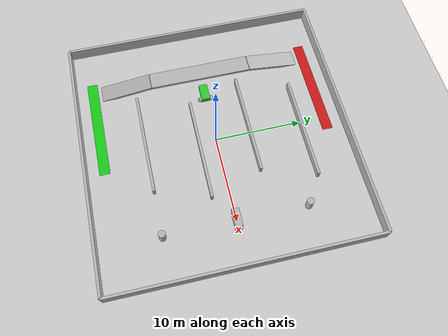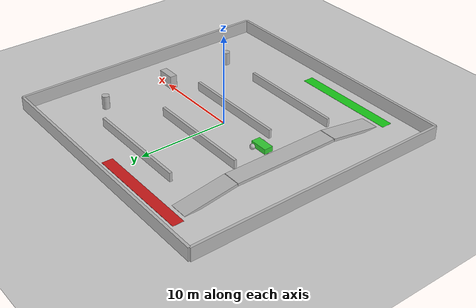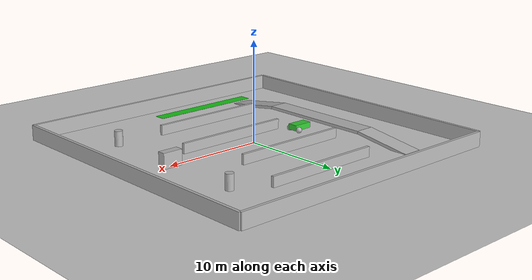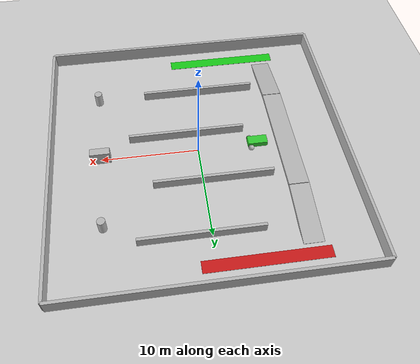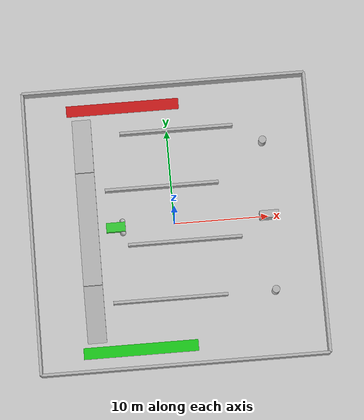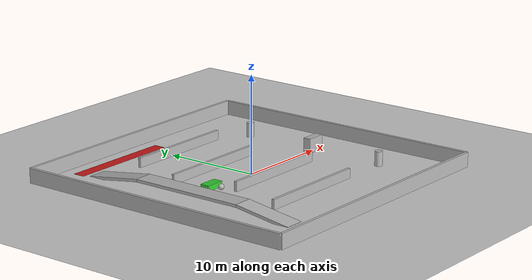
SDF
<sdf version="1.9">
 <world name="navigrid_world">
  <physics name="1ms" type="ignored">
   <max_step_size>0.001</max_step_size>
   <real_time_factor>1.0</real_time_factor>
  </physics>
  <plugin filename="gz-sim-physics-system" name="gz::sim::systems::Physics"/>
  <plugin filename="gz-sim-scene-broadcaster-system" name="gz::sim::systems::SceneBroadcaster"/>
  <plugin filename="gz-sim-sensors-system" name="gz::sim::systems::Sensors">
   <render_engine>ogre2</render_engine>
  </plugin>
  <plugin filename="gz-sim8-imu-system" name="gz::sim::systems::Imu"/>
  <plugin filename="gz-sim-user-commands-system" name="gz::sim::systems::UserCommands"/>
  <light name="sun" type="directional">
   <pose>0 0 10 0 0 0</pose>
   <diffuse>0.8 0.8 0.8 1</diffuse>
   <direction>-0.5 0.1 -0.9</direction>
  </light>
  <model name="ground_plane">
   <static>true</static>
   <link name="link">
    <collision name="collision">
     <geometry><plane><normal>0 0 1</normal><size>100 100</size></plane></geometry>
    </collision>
    <visual name="visual"><geometry><plane><normal>0 0 1</normal><size>100 100</size></plane></geometry></visual>
   </link>
  </model>
  <model name="start_zone_A">
   <static>true</static>
   <pose>-4.5 -13 0.011 0 0 0</pose>
   <link name="link">
    <visual name="visual">
     <geometry><box><size>12 1.2 0.02</size></box></geometry>
     <material>
      <ambient>0.1 0.8 0.1 1</ambient>
      <diffuse>0.1 0.8 0.1 1</diffuse>
      <emissive>0.02 0.2 0.02 1</emissive>
     </material>
    </visual>
   </link>
  </model>
  <model name="goal_zone_B">
   <static>true</static>
   <pose>-4.5 13 0.011 0 0 0</pose>
   <link name="link">
    <visual name="visual">
     <geometry><box><size>12 1.2 0.02</size></box></geometry>
     <material>
      <ambient>0.8 0.1 0.1 1</ambient>
      <diffuse>0.8 0.1 0.1 1</diffuse>
      <emissive>0.2 0.02 0.02 1</emissive>
     </material>
    </visual>
   </link>
  </model>
  <model name="north_wall">
   <static>true</static>
   <pose>0 15 0.75 0 0 0</pose>
   <link name="link">
    <collision name="collision"><geometry><box><size>30 0.3 1.5</size></box></geometry></collision>
    <visual name="visual"><geometry><box><size>30 0.3 1.5</size></box></geometry></visual>
   </link>
  </model>
  <model name="south_wall">
   <static>true</static>
   <pose>0 -15 0.75 0 0 0</pose>
   <link name="link">
    <collision name="collision"><geometry><box><size>30 0.3 1.5</size></box></geometry></collision>
    <visual name="visual"><geometry><box><size>30 0.3 1.5</size></box></geometry></visual>
   </link>
  </model>
  <model name="east_wall">
   <static>true</static>
   <pose>15 0 0.75 0 0 0</pose>
   <link name="link">
    <collision name="collision"><geometry><box><size>0.3 30 1.5</size></box></geometry></collision>
    <visual name="visual"><geometry><box><size>0.3 30 1.5</size></box></geometry></visual>
   </link>
  </model>
  <model name="west_wall">
   <static>true</static>
   <pose>-15 0 0.75 0 0 0</pose>
   <link name="link">
    <collision name="collision"><geometry><box><size>0.3 30 1.5</size></box></geometry></collision>
    <visual name="visual"><geometry><box><size>0.3 30 1.5</size></box></geometry></visual>
   </link>
  </model>
  <model name="direct_route_ascending_ramp">
   <static>true</static>
   <pose>-9 -9 0.3 0.15 0 0</pose>
   <link name="link">
    <collision name="collision"><geometry><box><size>2 6 0.3</size></box></geometry></collision>
    <visual name="visual"><geometry><box><size>2 6 0.3</size></box></geometry></visual>
   </link>
  </model>
  <model name="direct_route_elevated_platform">
   <static>true</static>
   <pose>-9 0 0.746 0 0 0</pose>
   <link name="link">
    <collision name="collision"><geometry><box><size>2 12 0.3</size></box></geometry></collision>
    <visual name="visual"><geometry><box><size>2 12 0.3</size></box></geometry></visual>
   </link>
  </model>
  <model name="direct_route_descending_ramp">
   <static>true</static>
   <pose>-9 9 0.3 -0.15 0 0</pose>
   <link name="link">
    <collision name="collision"><geometry><box><size>2 6 0.3</size></box></geometry></collision>
    <visual name="visual"><geometry><box><size>2 6 0.3</size></box></geometry></visual>
   </link>
  </model>
  <model name="zigzag_wall_1">
   <static>true</static>
   <pose>-1 -8 0.5 0 0 0</pose>
   <link name="link">
    <collision name="collision"><geometry><box><size>12 0.3 1</size></box></geometry></collision>
    <visual name="visual"><geometry><box><size>12 0.3 1</size></box></geometry></visual>
   </link>
  </model>
  <model name="zigzag_wall_2">
   <static>true</static>
   <pose>1 -2 0.5 0 0 0</pose>
   <link name="link">
    <collision name="collision"><geometry><box><size>12 0.3 1</size></box></geometry></collision>
    <visual name="visual"><geometry><box><size>12 0.3 1</size></box></geometry></visual>
   </link>
  </model>
  <model name="zigzag_wall_3">
   <static>true</static>
   <pose>-1 4 0.5 0 0 0</pose>
   <link name="link">
    <collision name="collision"><geometry><box><size>12 0.3 1</size></box></geometry></collision>
    <visual name="visual"><geometry><box><size>12 0.3 1</size></box></geometry></visual>
   </link>
  </model>
  <model name="zigzag_wall_4">
   <static>true</static>
   <pose>1 10 0.5 0 0 0</pose>
   <link name="link">
    <collision name="collision"><geometry><box><size>12 0.3 1</size></box></geometry></collision>
    <visual name="visual"><geometry><box><size>12 0.3 1</size></box></geometry></visual>
   </link>
  </model>
  <model name="pillar_1">
   <static>true</static>
   <pose>10 -8 0.75 0 0 0</pose>
   <link name="link">
    <collision name="collision">
     <geometry><cylinder><radius>0.4</radius><length>1.5</length></cylinder></geometry>
    </collision>
    <visual name="visual">
     <geometry><cylinder><radius>0.4</radius><length>1.5</length></cylinder></geometry>
    </visual>
   </link>
  </model>
  <model name="pillar_2">
   <static>true</static>
   <pose>10 8 0.75 0 0 0</pose>
   <link name="link">
    <collision name="collision">
     <geometry><cylinder><radius>0.4</radius><length>1.5</length></cylinder></geometry>
    </collision>
    <visual name="visual">
     <geometry><cylinder><radius>0.4</radius><length>1.5</length></cylinder></geometry>
    </visual>
   </link>
  </model>
  <model name="warehouse_rack">
   <static>true</static>
   <pose>10 0 0.75 0 0 0</pose>
   <link name="link">
    <collision name="collision"><geometry><box><size>2 0.8 1.5</size></box></geometry></collision>
    <visual name="visual"><geometry><box><size>2 0.8 1.5</size></box></geometry></visual>
   </link>
  </model>
  <model name="secondary_robot">
   <pose>-6 0 0.325 0 0 0</pose>
   <link name="chassis">
    <pose>-0.151427 0 0.175 0 0 0</pose>
    <inertial>
     <mass>1.14395</mass>
     <inertia>
      <ixx>0.126164</ixx>
      <ixy>0</ixy>
      <ixz>0</ixz>
      <iyy>0.416519</iyy>
      <iyz>0</iyz>
      <izz>0.481014</izz>
     </inertia>
    </inertial>
    <visual name="visual">
     <geometry><box><size>2.01142 1 0.568726</size></box></geometry>
     <material><ambient>0.2 0.8 0.2 1</ambient><diffuse>0.2 0.8 0.2 1</diffuse></material>
    </visual>
    <collision name="collision"><geometry><box><size>2.01142 1 0.568726</size></box></geometry></collision>
   </link>
   <link name="left_wheel">
    <pose>0.554283 0.625029 -0.025 -1.5707 0 0</pose>
    <inertial>
     <mass>2</mass>
     <inertia><ixx>0.145833</ixx><ixy>0</ixy><ixz>0</ixz><iyy>0.145833</iyy><iyz>0</iyz><izz>0.125</izz></inertia>
    </inertial>
    <visual name="visual"><geometry><sphere><radius>0.3</radius></sphere></geometry></visual>
    <collision name="collision">
     <geometry><sphere><radius>0.3</radius></sphere></geometry>
     <surface><friction><ode><mu>1</mu><mu2>1</mu2></ode></friction></surface>
    </collision>
   </link>
   <link name="right_wheel">
    <pose>0.554282 -0.625029 -0.025 -1.5707 0 0</pose>
    <inertial>
     <mass>2</mass>
     <inertia><ixx>0.145833</ixx><ixy>0</ixy><ixz>0</ixz><iyy>0.145833</iyy><iyz>0</iyz><izz>0.125</izz></inertia>
    </inertial>
    <visual name="visual"><geometry><sphere><radius>0.3</radius></sphere></geometry></visual>
    <collision name="collision">
     <geometry><sphere><radius>0.3</radius></sphere></geometry>
     <surface><friction><ode><mu>1</mu><mu2>1</mu2></ode></friction></surface>
    </collision>
   </link>
   <link name="caster">
    <pose>-0.957138 0 -0.125 0 0 0</pose>
    <inertial>
     <mass>1</mass>
     <inertia><ixx>0.1</ixx><ixy>0</ixy><ixz>0</ixz><iyy>0.1</iyy><iyz>0</iyz><izz>0.1</izz></inertia>
    </inertial>
    <visual name="visual"><geometry><sphere><radius>0.2</radius></sphere></geometry></visual>
    <collision name="collision"><geometry><sphere><radius>0.2</radius></sphere></geometry></collision>
   </link>
   <joint name="left_wheel_joint" type="revolute">
    <parent>chassis</parent>
    <child>left_wheel</child>
    <axis><xyz>0 0 1</xyz><limit><lower>-1.79769e+308</lower><upper>1.79769e+308</upper></limit></axis>
   </joint>
   <joint name="right_wheel_joint" type="revolute">
    <parent>chassis</parent>
    <child>right_wheel</child>
    <axis><xyz>0 0 1</xyz><limit><lower>-1.79769e+308</lower><upper>1.79769e+308</upper></limit></axis>
   </joint>
   <joint name="caster_wheel" type="ball"><parent>chassis</parent><child>caster</child></joint>
   <plugin filename="gz-sim-diff-drive-system" name="gz::sim::systems::DiffDrive">
    <left_joint>left_wheel_joint</left_joint>
    <right_joint>right_wheel_joint</right_joint>
    <wheel_separation>1.25</wheel_separation>
    <wheel_radius>0.3</wheel_radius>
    <odom_publish_frequency>1</odom_publish_frequency>
    <max_linear_acceleration>1</max_linear_acceleration>
    <min_linear_acceleration>-1</min_linear_acceleration>
    <max_angular_acceleration>2</max_angular_acceleration>
    <min_angular_acceleration>-2</min_angular_acceleration>
    <max_linear_velocity>0.5</max_linear_velocity>
    <min_linear_velocity>-0.5</min_linear_velocity>
    <max_angular_velocity>1</max_angular_velocity>
    <min_angular_velocity>-1</min_angular_velocity>
   </plugin>
  </model>
 </world>
</sdf>
